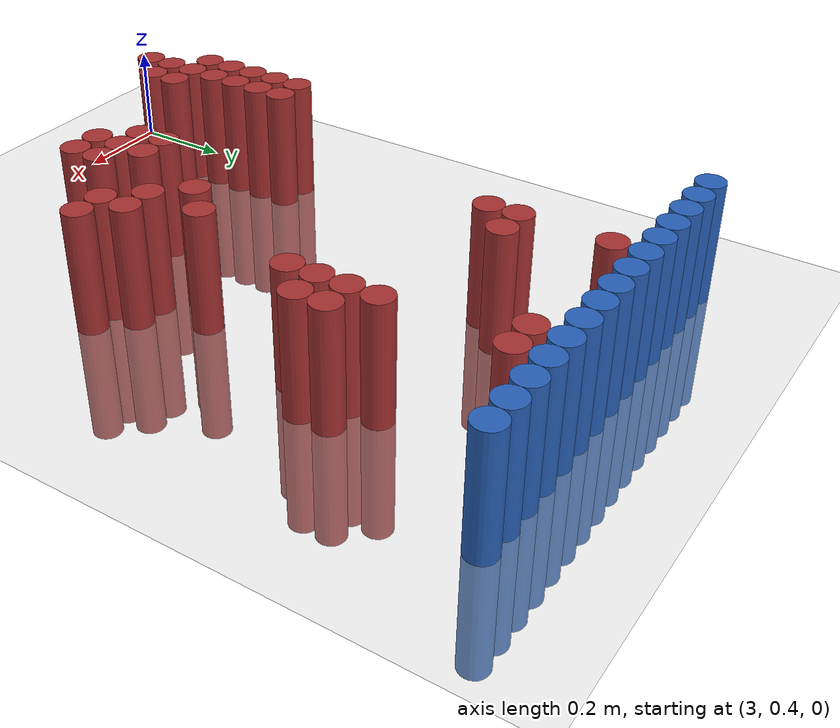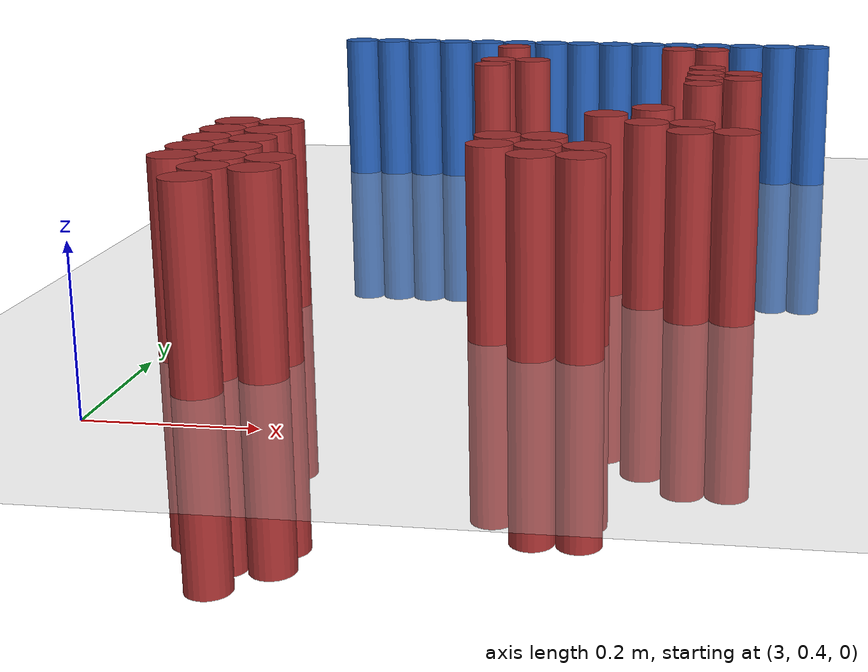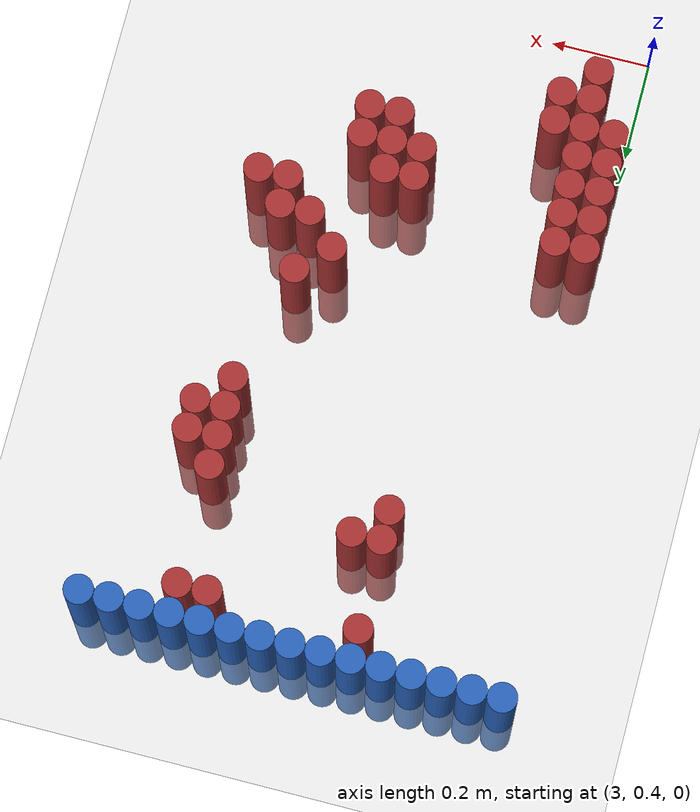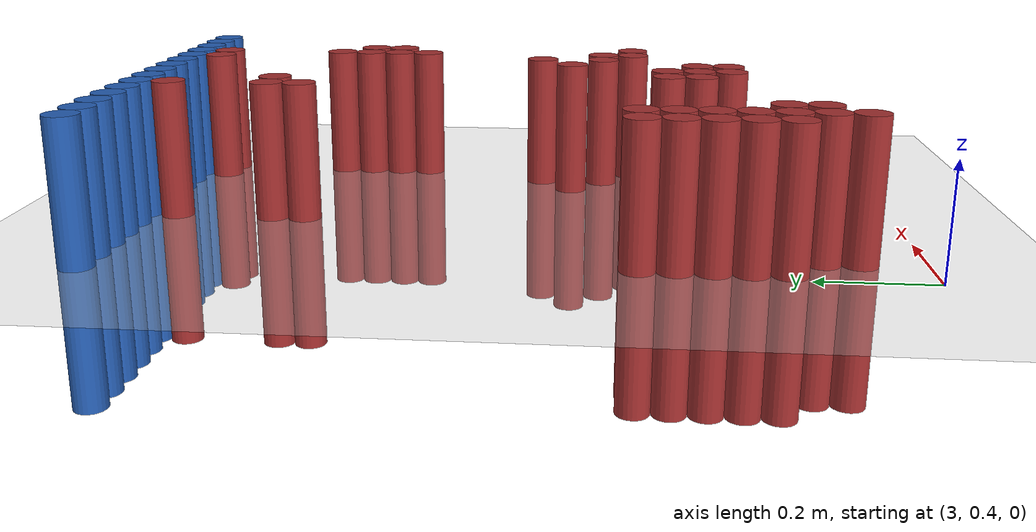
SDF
<sdf version="1.6">
 <world name="default">
  <model name="ground_plane">
   <static>1</static>
   <link name="link">
    <collision name="collision">
     <geometry><plane><normal>0 0 1</normal><size>100 100</size></plane></geometry>
     <surface><friction><ode><mu>100</mu><mu2>50</mu2></ode></friction></surface>
    </collision>
    <visual name="visual">
     <cast_shadows>0</cast_shadows>
     <geometry><plane><normal>0 0 1</normal><size>100 100</size></plane></geometry>
     <material>
      <script><uri>file://media/materials/scripts/gazebo.material</uri><name>Gazebo/Grey</name></script>
     </material>
    </visual>
   </link>
  </model>
  <model name="unit_cylinder_110">
   <static>1</static>
   <pose>2.970000 1.770000 0.000000 0.000000 0.000000 0.000000</pose>
   <link name="link">
    <inertial>
     <mass>1</mass>
     <inertia><ixx>0.145833</ixx><ixy>0</ixy><ixz>0</ixz><iyy>0.145833</iyy><iyz>0</iyz><izz>0.125</izz></inertia>
    </inertial>
    <collision name="collision">
     <geometry><cylinder><radius>0.030000</radius><length>0.5</length></cylinder></geometry>
    </collision>
    <visual name="visual">
     <geometry><cylinder><radius>0.030000</radius><length>0.5</length></cylinder></geometry>
     <material>
      <ambient>0.152000 0.379000 0.720000 1</ambient>
      <diffuse>0.152000 0.379000 0.720000 1</diffuse>
     </material>
     <material>
      <script><name>Gazebo/Grey</name><uri>file://media/materials/scripts/gazebo.material</uri></script>
     </material>
    </visual>
   </link>
  </model>
  <model name="unit_cylinder_111">
   <static>1</static>
   <pose>3.030000 1.770000 0.000000 0.000000 0.000000 0.000000</pose>
   <link name="link">
    <inertial>
     <mass>1</mass>
     <inertia><ixx>0.145833</ixx><ixy>0</ixy><ixz>0</ixz><iyy>0.145833</iyy><iyz>0</iyz><izz>0.125</izz></inertia>
    </inertial>
    <collision name="collision">
     <geometry><cylinder><radius>0.030000</radius><length>0.5</length></cylinder></geometry>
    </collision>
    <visual name="visual">
     <geometry><cylinder><radius>0.030000</radius><length>0.5</length></cylinder></geometry>
     <material>
      <ambient>0.152000 0.379000 0.720000 1</ambient>
      <diffuse>0.152000 0.379000 0.720000 1</diffuse>
     </material>
     <material>
      <script><name>Gazebo/Grey</name><uri>file://media/materials/scripts/gazebo.material</uri></script>
     </material>
    </visual>
   </link>
  </model>
  <model name="unit_cylinder_112">
   <static>1</static>
   <pose>3.090000 1.770000 0.000000 0.000000 0.000000 0.000000</pose>
   <link name="link">
    <inertial>
     <mass>1</mass>
     <inertia><ixx>0.145833</ixx><ixy>0</ixy><ixz>0</ixz><iyy>0.145833</iyy><iyz>0</iyz><izz>0.125</izz></inertia>
    </inertial>
    <collision name="collision">
     <geometry><cylinder><radius>0.030000</radius><length>0.5</length></cylinder></geometry>
    </collision>
    <visual name="visual">
     <geometry><cylinder><radius>0.030000</radius><length>0.5</length></cylinder></geometry>
     <material>
      <ambient>0.152000 0.379000 0.720000 1</ambient>
      <diffuse>0.152000 0.379000 0.720000 1</diffuse>
     </material>
     <material>
      <script><name>Gazebo/Grey</name><uri>file://media/materials/scripts/gazebo.material</uri></script>
     </material>
    </visual>
   </link>
  </model>
  <model name="unit_cylinder_113">
   <static>1</static>
   <pose>3.150000 1.770000 0.000000 0.000000 0.000000 0.000000</pose>
   <link name="link">
    <inertial>
     <mass>1</mass>
     <inertia><ixx>0.145833</ixx><ixy>0</ixy><ixz>0</ixz><iyy>0.145833</iyy><iyz>0</iyz><izz>0.125</izz></inertia>
    </inertial>
    <collision name="collision">
     <geometry><cylinder><radius>0.030000</radius><length>0.5</length></cylinder></geometry>
    </collision>
    <visual name="visual">
     <geometry><cylinder><radius>0.030000</radius><length>0.5</length></cylinder></geometry>
     <material>
      <ambient>0.152000 0.379000 0.720000 1</ambient>
      <diffuse>0.152000 0.379000 0.720000 1</diffuse>
     </material>
     <material>
      <script><name>Gazebo/Grey</name><uri>file://media/materials/scripts/gazebo.material</uri></script>
     </material>
    </visual>
   </link>
  </model>
  <model name="unit_cylinder_114">
   <static>1</static>
   <pose>3.210000 1.770000 0.000000 0.000000 0.000000 0.000000</pose>
   <link name="link">
    <inertial>
     <mass>1</mass>
     <inertia><ixx>0.145833</ixx><ixy>0</ixy><ixz>0</ixz><iyy>0.145833</iyy><iyz>0</iyz><izz>0.125</izz></inertia>
    </inertial>
    <collision name="collision">
     <geometry><cylinder><radius>0.030000</radius><length>0.5</length></cylinder></geometry>
    </collision>
    <visual name="visual">
     <geometry><cylinder><radius>0.030000</radius><length>0.5</length></cylinder></geometry>
     <material>
      <ambient>0.152000 0.379000 0.720000 1</ambient>
      <diffuse>0.152000 0.379000 0.720000 1</diffuse>
     </material>
     <material>
      <script><name>Gazebo/Grey</name><uri>file://media/materials/scripts/gazebo.material</uri></script>
     </material>
    </visual>
   </link>
  </model>
  <model name="unit_cylinder_115">
   <static>1</static>
   <pose>3.270000 1.770000 0.000000 0.000000 0.000000 0.000000</pose>
   <link name="link">
    <inertial>
     <mass>1</mass>
     <inertia><ixx>0.145833</ixx><ixy>0</ixy><ixz>0</ixz><iyy>0.145833</iyy><iyz>0</iyz><izz>0.125</izz></inertia>
    </inertial>
    <collision name="collision">
     <geometry><cylinder><radius>0.030000</radius><length>0.5</length></cylinder></geometry>
    </collision>
    <visual name="visual">
     <geometry><cylinder><radius>0.030000</radius><length>0.5</length></cylinder></geometry>
     <material>
      <ambient>0.152000 0.379000 0.720000 1</ambient>
      <diffuse>0.152000 0.379000 0.720000 1</diffuse>
     </material>
     <material>
      <script><name>Gazebo/Grey</name><uri>file://media/materials/scripts/gazebo.material</uri></script>
     </material>
    </visual>
   </link>
  </model>
  <model name="unit_cylinder_116">
   <static>1</static>
   <pose>3.330000 1.770000 0.000000 0.000000 0.000000 0.000000</pose>
   <link name="link">
    <inertial>
     <mass>1</mass>
     <inertia><ixx>0.145833</ixx><ixy>0</ixy><ixz>0</ixz><iyy>0.145833</iyy><iyz>0</iyz><izz>0.125</izz></inertia>
    </inertial>
    <collision name="collision">
     <geometry><cylinder><radius>0.030000</radius><length>0.5</length></cylinder></geometry>
    </collision>
    <visual name="visual">
     <geometry><cylinder><radius>0.030000</radius><length>0.5</length></cylinder></geometry>
     <material>
      <ambient>0.152000 0.379000 0.720000 1</ambient>
      <diffuse>0.152000 0.379000 0.720000 1</diffuse>
     </material>
     <material>
      <script><name>Gazebo/Grey</name><uri>file://media/materials/scripts/gazebo.material</uri></script>
     </material>
    </visual>
   </link>
  </model>
  <model name="unit_cylinder_117">
   <static>1</static>
   <pose>3.390000 1.770000 0.000000 0.000000 0.000000 0.000000</pose>
   <link name="link">
    <inertial>
     <mass>1</mass>
     <inertia><ixx>0.145833</ixx><ixy>0</ixy><ixz>0</ixz><iyy>0.145833</iyy><iyz>0</iyz><izz>0.125</izz></inertia>
    </inertial>
    <collision name="collision">
     <geometry><cylinder><radius>0.030000</radius><length>0.5</length></cylinder></geometry>
    </collision>
    <visual name="visual">
     <geometry><cylinder><radius>0.030000</radius><length>0.5</length></cylinder></geometry>
     <material>
      <ambient>0.152000 0.379000 0.720000 1</ambient>
      <diffuse>0.152000 0.379000 0.720000 1</diffuse>
     </material>
     <material>
      <script><name>Gazebo/Grey</name><uri>file://media/materials/scripts/gazebo.material</uri></script>
     </material>
    </visual>
   </link>
  </model>
  <model name="unit_cylinder_118">
   <static>1</static>
   <pose>3.450000 1.770000 0.000000 0.000000 0.000000 0.000000</pose>
   <link name="link">
    <inertial>
     <mass>1</mass>
     <inertia><ixx>0.145833</ixx><ixy>0</ixy><ixz>0</ixz><iyy>0.145833</iyy><iyz>0</iyz><izz>0.125</izz></inertia>
    </inertial>
    <collision name="collision">
     <geometry><cylinder><radius>0.030000</radius><length>0.5</length></cylinder></geometry>
    </collision>
    <visual name="visual">
     <geometry><cylinder><radius>0.030000</radius><length>0.5</length></cylinder></geometry>
     <material>
      <ambient>0.152000 0.379000 0.720000 1</ambient>
      <diffuse>0.152000 0.379000 0.720000 1</diffuse>
     </material>
     <material>
      <script><name>Gazebo/Grey</name><uri>file://media/materials/scripts/gazebo.material</uri></script>
     </material>
    </visual>
   </link>
  </model>
  <model name="unit_cylinder_119">
   <static>1</static>
   <pose>3.510000 1.770000 0.000000 0.000000 0.000000 0.000000</pose>
   <link name="link">
    <inertial>
     <mass>1</mass>
     <inertia><ixx>0.145833</ixx><ixy>0</ixy><ixz>0</ixz><iyy>0.145833</iyy><iyz>0</iyz><izz>0.125</izz></inertia>
    </inertial>
    <collision name="collision">
     <geometry><cylinder><radius>0.030000</radius><length>0.5</length></cylinder></geometry>
    </collision>
    <visual name="visual">
     <geometry><cylinder><radius>0.030000</radius><length>0.5</length></cylinder></geometry>
     <material>
      <ambient>0.152000 0.379000 0.720000 1</ambient>
      <diffuse>0.152000 0.379000 0.720000 1</diffuse>
     </material>
     <material>
      <script><name>Gazebo/Grey</name><uri>file://media/materials/scripts/gazebo.material</uri></script>
     </material>
    </visual>
   </link>
  </model>
  <model name="unit_cylinder_120">
   <static>1</static>
   <pose>3.570000 1.770000 0.000000 0.000000 0.000000 0.000000</pose>
   <link name="link">
    <inertial>
     <mass>1</mass>
     <inertia><ixx>0.145833</ixx><ixy>0</ixy><ixz>0</ixz><iyy>0.145833</iyy><iyz>0</iyz><izz>0.125</izz></inertia>
    </inertial>
    <collision name="collision">
     <geometry><cylinder><radius>0.030000</radius><length>0.5</length></cylinder></geometry>
    </collision>
    <visual name="visual">
     <geometry><cylinder><radius>0.030000</radius><length>0.5</length></cylinder></geometry>
     <material>
      <ambient>0.152000 0.379000 0.720000 1</ambient>
      <diffuse>0.152000 0.379000 0.720000 1</diffuse>
     </material>
     <material>
      <script><name>Gazebo/Grey</name><uri>file://media/materials/scripts/gazebo.material</uri></script>
     </material>
    </visual>
   </link>
  </model>
  <model name="unit_cylinder_121">
   <static>1</static>
   <pose>3.630000 1.770000 0.000000 0.000000 0.000000 0.000000</pose>
   <link name="link">
    <inertial>
     <mass>1</mass>
     <inertia><ixx>0.145833</ixx><ixy>0</ixy><ixz>0</ixz><iyy>0.145833</iyy><iyz>0</iyz><izz>0.125</izz></inertia>
    </inertial>
    <collision name="collision">
     <geometry><cylinder><radius>0.030000</radius><length>0.5</length></cylinder></geometry>
    </collision>
    <visual name="visual">
     <geometry><cylinder><radius>0.030000</radius><length>0.5</length></cylinder></geometry>
     <material>
      <ambient>0.152000 0.379000 0.720000 1</ambient>
      <diffuse>0.152000 0.379000 0.720000 1</diffuse>
     </material>
     <material>
      <script><name>Gazebo/Grey</name><uri>file://media/materials/scripts/gazebo.material</uri></script>
     </material>
    </visual>
   </link>
  </model>
  <model name="unit_cylinder_122">
   <static>1</static>
   <pose>3.690000 1.770000 0.000000 0.000000 0.000000 0.000000</pose>
   <link name="link">
    <inertial>
     <mass>1</mass>
     <inertia><ixx>0.145833</ixx><ixy>0</ixy><ixz>0</ixz><iyy>0.145833</iyy><iyz>0</iyz><izz>0.125</izz></inertia>
    </inertial>
    <collision name="collision">
     <geometry><cylinder><radius>0.030000</radius><length>0.5</length></cylinder></geometry>
    </collision>
    <visual name="visual">
     <geometry><cylinder><radius>0.030000</radius><length>0.5</length></cylinder></geometry>
     <material>
      <ambient>0.152000 0.379000 0.720000 1</ambient>
      <diffuse>0.152000 0.379000 0.720000 1</diffuse>
     </material>
     <material>
      <script><name>Gazebo/Grey</name><uri>file://media/materials/scripts/gazebo.material</uri></script>
     </material>
    </visual>
   </link>
  </model>
  <model name="unit_cylinder_123">
   <static>1</static>
   <pose>3.750000 1.770000 0.000000 0.000000 0.000000 0.000000</pose>
   <link name="link">
    <inertial>
     <mass>1</mass>
     <inertia><ixx>0.145833</ixx><ixy>0</ixy><ixz>0</ixz><iyy>0.145833</iyy><iyz>0</iyz><izz>0.125</izz></inertia>
    </inertial>
    <collision name="collision">
     <geometry><cylinder><radius>0.030000</radius><length>0.5</length></cylinder></geometry>
    </collision>
    <visual name="visual">
     <geometry><cylinder><radius>0.030000</radius><length>0.5</length></cylinder></geometry>
     <material>
      <ambient>0.152000 0.379000 0.720000 1</ambient>
      <diffuse>0.152000 0.379000 0.720000 1</diffuse>
     </material>
     <material>
      <script><name>Gazebo/Grey</name><uri>file://media/materials/scripts/gazebo.material</uri></script>
     </material>
    </visual>
   </link>
  </model>
  <model name="unit_cylinder_124">
   <static>1</static>
   <pose>3.810000 1.770000 0.000000 0.000000 0.000000 0.000000</pose>
   <link name="link">
    <inertial>
     <mass>1</mass>
     <inertia><ixx>0.145833</ixx><ixy>0</ixy><ixz>0</ixz><iyy>0.145833</iyy><iyz>0</iyz><izz>0.125</izz></inertia>
    </inertial>
    <collision name="collision">
     <geometry><cylinder><radius>0.030000</radius><length>0.5</length></cylinder></geometry>
    </collision>
    <visual name="visual">
     <geometry><cylinder><radius>0.030000</radius><length>0.5</length></cylinder></geometry>
     <material>
      <ambient>0.152000 0.379000 0.720000 1</ambient>
      <diffuse>0.152000 0.379000 0.720000 1</diffuse>
     </material>
     <material>
      <script><name>Gazebo/Grey</name><uri>file://media/materials/scripts/gazebo.material</uri></script>
     </material>
    </visual>
   </link>
  </model>
  <model name="unit_cylinder_134">
   <static>1</static>
   <pose>3.270000 1.710000 0.000000 0.000000 0.000000 0.000000</pose>
   <link name="link">
    <inertial>
     <mass>1</mass>
     <inertia><ixx>0.145833</ixx><ixy>0</ixy><ixz>0</ixz><iyy>0.145833</iyy><iyz>0</iyz><izz>0.125</izz></inertia>
    </inertial>
    <collision name="collision">
     <geometry><cylinder><radius>0.030000</radius><length>0.5</length></cylinder></geometry>
    </collision>
    <visual name="visual">
     <geometry><cylinder><radius>0.030000</radius><length>0.5</length></cylinder></geometry>
     <material>
      <ambient>0.648000 0.192000 0.192000 1</ambient>
      <diffuse>0.648000 0.192000 0.192000 1</diffuse>
     </material>
     <material>
      <script><name>Gazebo/Grey</name><uri>file://media/materials/scripts/gazebo.material</uri></script>
     </material>
    </visual>
   </link>
  </model>
  <model name="unit_cylinder_135">
   <static>1</static>
   <pose>3.570000 1.710000 0.000000 0.000000 0.000000 0.000000</pose>
   <link name="link">
    <inertial>
     <mass>1</mass>
     <inertia><ixx>0.145833</ixx><ixy>0</ixy><ixz>0</ixz><iyy>0.145833</iyy><iyz>0</iyz><izz>0.125</izz></inertia>
    </inertial>
    <collision name="collision">
     <geometry><cylinder><radius>0.030000</radius><length>0.5</length></cylinder></geometry>
    </collision>
    <visual name="visual">
     <geometry><cylinder><radius>0.030000</radius><length>0.5</length></cylinder></geometry>
     <material>
      <ambient>0.648000 0.192000 0.192000 1</ambient>
      <diffuse>0.648000 0.192000 0.192000 1</diffuse>
     </material>
     <material>
      <script><name>Gazebo/Grey</name><uri>file://media/materials/scripts/gazebo.material</uri></script>
     </material>
    </visual>
   </link>
  </model>
  <model name="unit_cylinder_136">
   <static>1</static>
   <pose>3.630000 1.710000 0.000000 0.000000 0.000000 0.000000</pose>
   <link name="link">
    <inertial>
     <mass>1</mass>
     <inertia><ixx>0.145833</ixx><ixy>0</ixy><ixz>0</ixz><iyy>0.145833</iyy><iyz>0</iyz><izz>0.125</izz></inertia>
    </inertial>
    <collision name="collision">
     <geometry><cylinder><radius>0.030000</radius><length>0.5</length></cylinder></geometry>
    </collision>
    <visual name="visual">
     <geometry><cylinder><radius>0.030000</radius><length>0.5</length></cylinder></geometry>
     <material>
      <ambient>0.648000 0.192000 0.192000 1</ambient>
      <diffuse>0.648000 0.192000 0.192000 1</diffuse>
     </material>
     <material>
      <script><name>Gazebo/Grey</name><uri>file://media/materials/scripts/gazebo.material</uri></script>
     </material>
    </visual>
   </link>
  </model>
  <model name="unit_cylinder_138">
   <static>1</static>
   <pose>3.270000 1.530000 0.000000 0.000000 0.000000 0.000000</pose>
   <link name="link">
    <inertial>
     <mass>1</mass>
     <inertia><ixx>0.145833</ixx><ixy>0</ixy><ixz>0</ixz><iyy>0.145833</iyy><iyz>0</iyz><izz>0.125</izz></inertia>
    </inertial>
    <collision name="collision">
     <geometry><cylinder><radius>0.030000</radius><length>0.5</length></cylinder></geometry>
    </collision>
    <visual name="visual">
     <geometry><cylinder><radius>0.030000</radius><length>0.5</length></cylinder></geometry>
     <material>
      <ambient>0.648000 0.192000 0.192000 1</ambient>
      <diffuse>0.648000 0.192000 0.192000 1</diffuse>
     </material>
     <material>
      <script><name>Gazebo/Grey</name><uri>file://media/materials/scripts/gazebo.material</uri></script>
     </material>
    </visual>
   </link>
  </model>
  <model name="unit_cylinder_139">
   <static>1</static>
   <pose>3.330000 1.530000 0.000000 0.000000 0.000000 0.000000</pose>
   <link name="link">
    <inertial>
     <mass>1</mass>
     <inertia><ixx>0.145833</ixx><ixy>0</ixy><ixz>0</ixz><iyy>0.145833</iyy><iyz>0</iyz><izz>0.125</izz></inertia>
    </inertial>
    <collision name="collision">
     <geometry><cylinder><radius>0.030000</radius><length>0.5</length></cylinder></geometry>
    </collision>
    <visual name="visual">
     <geometry><cylinder><radius>0.030000</radius><length>0.5</length></cylinder></geometry>
     <material>
      <ambient>0.648000 0.192000 0.192000 1</ambient>
      <diffuse>0.648000 0.192000 0.192000 1</diffuse>
     </material>
     <material>
      <script><name>Gazebo/Grey</name><uri>file://media/materials/scripts/gazebo.material</uri></script>
     </material>
    </visual>
   </link>
  </model>
  <model name="unit_cylinder_144">
   <static>1</static>
   <pose>3.270000 1.470000 0.000000 0.000000 0.000000 0.000000</pose>
   <link name="link">
    <inertial>
     <mass>1</mass>
     <inertia><ixx>0.145833</ixx><ixy>0</ixy><ixz>0</ixz><iyy>0.145833</iyy><iyz>0</iyz><izz>0.125</izz></inertia>
    </inertial>
    <collision name="collision">
     <geometry><cylinder><radius>0.030000</radius><length>0.5</length></cylinder></geometry>
    </collision>
    <visual name="visual">
     <geometry><cylinder><radius>0.030000</radius><length>0.5</length></cylinder></geometry>
     <material>
      <ambient>0.648000 0.192000 0.192000 1</ambient>
      <diffuse>0.648000 0.192000 0.192000 1</diffuse>
     </material>
     <material>
      <script><name>Gazebo/Grey</name><uri>file://media/materials/scripts/gazebo.material</uri></script>
     </material>
    </visual>
   </link>
  </model>
  <model name="unit_cylinder_145">
   <static>1</static>
   <pose>3.630000 1.470000 0.000000 0.000000 0.000000 0.000000</pose>
   <link name="link">
    <inertial>
     <mass>1</mass>
     <inertia><ixx>0.145833</ixx><ixy>0</ixy><ixz>0</ixz><iyy>0.145833</iyy><iyz>0</iyz><izz>0.125</izz></inertia>
    </inertial>
    <collision name="collision">
     <geometry><cylinder><radius>0.030000</radius><length>0.5</length></cylinder></geometry>
    </collision>
    <visual name="visual">
     <geometry><cylinder><radius>0.030000</radius><length>0.5</length></cylinder></geometry>
     <material>
      <ambient>0.648000 0.192000 0.192000 1</ambient>
      <diffuse>0.648000 0.192000 0.192000 1</diffuse>
     </material>
     <material>
      <script><name>Gazebo/Grey</name><uri>file://media/materials/scripts/gazebo.material</uri></script>
     </material>
    </visual>
   </link>
  </model>
  <model name="unit_cylinder_150">
   <static>1</static>
   <pose>3.630000 1.410000 0.000000 0.000000 0.000000 0.000000</pose>
   <link name="link">
    <inertial>
     <mass>1</mass>
     <inertia><ixx>0.145833</ixx><ixy>0</ixy><ixz>0</ixz><iyy>0.145833</iyy><iyz>0</iyz><izz>0.125</izz></inertia>
    </inertial>
    <collision name="collision">
     <geometry><cylinder><radius>0.030000</radius><length>0.5</length></cylinder></geometry>
    </collision>
    <visual name="visual">
     <geometry><cylinder><radius>0.030000</radius><length>0.5</length></cylinder></geometry>
     <material>
      <ambient>0.648000 0.192000 0.192000 1</ambient>
      <diffuse>0.648000 0.192000 0.192000 1</diffuse>
     </material>
     <material>
      <script><name>Gazebo/Grey</name><uri>file://media/materials/scripts/gazebo.material</uri></script>
     </material>
    </visual>
   </link>
  </model>
  <model name="unit_cylinder_151">
   <static>1</static>
   <pose>3.690000 1.410000 0.000000 0.000000 0.000000 0.000000</pose>
   <link name="link">
    <inertial>
     <mass>1</mass>
     <inertia><ixx>0.145833</ixx><ixy>0</ixy><ixz>0</ixz><iyy>0.145833</iyy><iyz>0</iyz><izz>0.125</izz></inertia>
    </inertial>
    <collision name="collision">
     <geometry><cylinder><radius>0.030000</radius><length>0.5</length></cylinder></geometry>
    </collision>
    <visual name="visual">
     <geometry><cylinder><radius>0.030000</radius><length>0.5</length></cylinder></geometry>
     <material>
      <ambient>0.648000 0.192000 0.192000 1</ambient>
      <diffuse>0.648000 0.192000 0.192000 1</diffuse>
     </material>
     <material>
      <script><name>Gazebo/Grey</name><uri>file://media/materials/scripts/gazebo.material</uri></script>
     </material>
    </visual>
   </link>
  </model>
  <model name="unit_cylinder_157">
   <static>1</static>
   <pose>3.630000 1.350000 0.000000 0.000000 0.000000 0.000000</pose>
   <link name="link">
    <inertial>
     <mass>1</mass>
     <inertia><ixx>0.145833</ixx><ixy>0</ixy><ixz>0</ixz><iyy>0.145833</iyy><iyz>0</iyz><izz>0.125</izz></inertia>
    </inertial>
    <collision name="collision">
     <geometry><cylinder><radius>0.030000</radius><length>0.5</length></cylinder></geometry>
    </collision>
    <visual name="visual">
     <geometry><cylinder><radius>0.030000</radius><length>0.5</length></cylinder></geometry>
     <material>
      <ambient>0.648000 0.192000 0.192000 1</ambient>
      <diffuse>0.648000 0.192000 0.192000 1</diffuse>
     </material>
     <material>
      <script><name>Gazebo/Grey</name><uri>file://media/materials/scripts/gazebo.material</uri></script>
     </material>
    </visual>
   </link>
  </model>
  <model name="unit_cylinder_158">
   <static>1</static>
   <pose>3.690000 1.350000 0.000000 0.000000 0.000000 0.000000</pose>
   <link name="link">
    <inertial>
     <mass>1</mass>
     <inertia><ixx>0.145833</ixx><ixy>0</ixy><ixz>0</ixz><iyy>0.145833</iyy><iyz>0</iyz><izz>0.125</izz></inertia>
    </inertial>
    <collision name="collision">
     <geometry><cylinder><radius>0.030000</radius><length>0.5</length></cylinder></geometry>
    </collision>
    <visual name="visual">
     <geometry><cylinder><radius>0.030000</radius><length>0.5</length></cylinder></geometry>
     <material>
      <ambient>0.648000 0.192000 0.192000 1</ambient>
      <diffuse>0.648000 0.192000 0.192000 1</diffuse>
     </material>
     <material>
      <script><name>Gazebo/Grey</name><uri>file://media/materials/scripts/gazebo.material</uri></script>
     </material>
    </visual>
   </link>
  </model>
  <model name="unit_cylinder_162">
   <static>1</static>
   <pose>3.630000 1.290000 0.000000 0.000000 0.000000 0.000000</pose>
   <link name="link">
    <inertial>
     <mass>1</mass>
     <inertia><ixx>0.145833</ixx><ixy>0</ixy><ixz>0</ixz><iyy>0.145833</iyy><iyz>0</iyz><izz>0.125</izz></inertia>
    </inertial>
    <collision name="collision">
     <geometry><cylinder><radius>0.030000</radius><length>0.5</length></cylinder></geometry>
    </collision>
    <visual name="visual">
     <geometry><cylinder><radius>0.030000</radius><length>0.5</length></cylinder></geometry>
     <material>
      <ambient>0.648000 0.192000 0.192000 1</ambient>
      <diffuse>0.648000 0.192000 0.192000 1</diffuse>
     </material>
     <material>
      <script><name>Gazebo/Grey</name><uri>file://media/materials/scripts/gazebo.material</uri></script>
     </material>
    </visual>
   </link>
  </model>
  <model name="unit_cylinder_168">
   <static>1</static>
   <pose>3.570000 1.050000 0.000000 0.000000 0.000000 0.000000</pose>
   <link name="link">
    <inertial>
     <mass>1</mass>
     <inertia><ixx>0.145833</ixx><ixy>0</ixy><ixz>0</ixz><iyy>0.145833</iyy><iyz>0</iyz><izz>0.125</izz></inertia>
    </inertial>
    <collision name="collision">
     <geometry><cylinder><radius>0.030000</radius><length>0.5</length></cylinder></geometry>
    </collision>
    <visual name="visual">
     <geometry><cylinder><radius>0.030000</radius><length>0.5</length></cylinder></geometry>
     <material>
      <ambient>0.648000 0.192000 0.192000 1</ambient>
      <diffuse>0.648000 0.192000 0.192000 1</diffuse>
     </material>
     <material>
      <script><name>Gazebo/Grey</name><uri>file://media/materials/scripts/gazebo.material</uri></script>
     </material>
    </visual>
   </link>
  </model>
  <model name="unit_cylinder_175">
   <static>1</static>
   <pose>3.510000 0.990000 0.000000 0.000000 0.000000 0.000000</pose>
   <link name="link">
    <inertial>
     <mass>1</mass>
     <inertia><ixx>0.145833</ixx><ixy>0</ixy><ixz>0</ixz><iyy>0.145833</iyy><iyz>0</iyz><izz>0.125</izz></inertia>
    </inertial>
    <collision name="collision">
     <geometry><cylinder><radius>0.030000</radius><length>0.5</length></cylinder></geometry>
    </collision>
    <visual name="visual">
     <geometry><cylinder><radius>0.030000</radius><length>0.5</length></cylinder></geometry>
     <material>
      <ambient>0.648000 0.192000 0.192000 1</ambient>
      <diffuse>0.648000 0.192000 0.192000 1</diffuse>
     </material>
     <material>
      <script><name>Gazebo/Grey</name><uri>file://media/materials/scripts/gazebo.material</uri></script>
     </material>
    </visual>
   </link>
  </model>
  <model name="unit_cylinder_181">
   <static>1</static>
   <pose>3.570000 0.930000 0.000000 0.000000 0.000000 0.000000</pose>
   <link name="link">
    <inertial>
     <mass>1</mass>
     <inertia><ixx>0.145833</ixx><ixy>0</ixy><ixz>0</ixz><iyy>0.145833</iyy><iyz>0</iyz><izz>0.125</izz></inertia>
    </inertial>
    <collision name="collision">
     <geometry><cylinder><radius>0.030000</radius><length>0.5</length></cylinder></geometry>
    </collision>
    <visual name="visual">
     <geometry><cylinder><radius>0.030000</radius><length>0.5</length></cylinder></geometry>
     <material>
      <ambient>0.648000 0.192000 0.192000 1</ambient>
      <diffuse>0.648000 0.192000 0.192000 1</diffuse>
     </material>
     <material>
      <script><name>Gazebo/Grey</name><uri>file://media/materials/scripts/gazebo.material</uri></script>
     </material>
    </visual>
   </link>
  </model>
  <model name="unit_cylinder_182">
   <static>1</static>
   <pose>3.630000 0.930000 0.000000 0.000000 0.000000 0.000000</pose>
   <link name="link">
    <inertial>
     <mass>1</mass>
     <inertia><ixx>0.145833</ixx><ixy>0</ixy><ixz>0</ixz><iyy>0.145833</iyy><iyz>0</iyz><izz>0.125</izz></inertia>
    </inertial>
    <collision name="collision">
     <geometry><cylinder><radius>0.030000</radius><length>0.5</length></cylinder></geometry>
    </collision>
    <visual name="visual">
     <geometry><cylinder><radius>0.030000</radius><length>0.5</length></cylinder></geometry>
     <material>
      <ambient>0.648000 0.192000 0.192000 1</ambient>
      <diffuse>0.648000 0.192000 0.192000 1</diffuse>
     </material>
     <material>
      <script><name>Gazebo/Grey</name><uri>file://media/materials/scripts/gazebo.material</uri></script>
     </material>
    </visual>
   </link>
  </model>
  <model name="unit_cylinder_184">
   <static>1</static>
   <pose>3.030000 0.870000 0.000000 0.000000 0.000000 0.000000</pose>
   <link name="link">
    <inertial>
     <mass>1</mass>
     <inertia><ixx>0.145833</ixx><ixy>0</ixy><ixz>0</ixz><iyy>0.145833</iyy><iyz>0</iyz><izz>0.125</izz></inertia>
    </inertial>
    <collision name="collision">
     <geometry><cylinder><radius>0.030000</radius><length>0.5</length></cylinder></geometry>
    </collision>
    <visual name="visual">
     <geometry><cylinder><radius>0.030000</radius><length>0.5</length></cylinder></geometry>
     <material>
      <ambient>0.648000 0.192000 0.192000 1</ambient>
      <diffuse>0.648000 0.192000 0.192000 1</diffuse>
     </material>
     <material>
      <script><name>Gazebo/Grey</name><uri>file://media/materials/scripts/gazebo.material</uri></script>
     </material>
    </visual>
   </link>
  </model>
  <model name="unit_cylinder_185">
   <static>1</static>
   <pose>3.090000 0.870000 0.000000 0.000000 0.000000 0.000000</pose>
   <link name="link">
    <inertial>
     <mass>1</mass>
     <inertia><ixx>0.145833</ixx><ixy>0</ixy><ixz>0</ixz><iyy>0.145833</iyy><iyz>0</iyz><izz>0.125</izz></inertia>
    </inertial>
    <collision name="collision">
     <geometry><cylinder><radius>0.030000</radius><length>0.5</length></cylinder></geometry>
    </collision>
    <visual name="visual">
     <geometry><cylinder><radius>0.030000</radius><length>0.5</length></cylinder></geometry>
     <material>
      <ambient>0.648000 0.192000 0.192000 1</ambient>
      <diffuse>0.648000 0.192000 0.192000 1</diffuse>
     </material>
     <material>
      <script><name>Gazebo/Grey</name><uri>file://media/materials/scripts/gazebo.material</uri></script>
     </material>
    </visual>
   </link>
  </model>
  <model name="unit_cylinder_186">
   <static>1</static>
   <pose>3.630000 0.870000 0.000000 0.000000 0.000000 0.000000</pose>
   <link name="link">
    <inertial>
     <mass>1</mass>
     <inertia><ixx>0.145833</ixx><ixy>0</ixy><ixz>0</ixz><iyy>0.145833</iyy><iyz>0</iyz><izz>0.125</izz></inertia>
    </inertial>
    <collision name="collision">
     <geometry><cylinder><radius>0.030000</radius><length>0.5</length></cylinder></geometry>
    </collision>
    <visual name="visual">
     <geometry><cylinder><radius>0.030000</radius><length>0.5</length></cylinder></geometry>
     <material>
      <ambient>0.648000 0.192000 0.192000 1</ambient>
      <diffuse>0.648000 0.192000 0.192000 1</diffuse>
     </material>
     <material>
      <script><name>Gazebo/Grey</name><uri>file://media/materials/scripts/gazebo.material</uri></script>
     </material>
    </visual>
   </link>
  </model>
  <model name="unit_cylinder_187">
   <static>1</static>
   <pose>3.690000 0.870000 0.000000 0.000000 0.000000 0.000000</pose>
   <link name="link">
    <inertial>
     <mass>1</mass>
     <inertia><ixx>0.145833</ixx><ixy>0</ixy><ixz>0</ixz><iyy>0.145833</iyy><iyz>0</iyz><izz>0.125</izz></inertia>
    </inertial>
    <collision name="collision">
     <geometry><cylinder><radius>0.030000</radius><length>0.5</length></cylinder></geometry>
    </collision>
    <visual name="visual">
     <geometry><cylinder><radius>0.030000</radius><length>0.5</length></cylinder></geometry>
     <material>
      <ambient>0.648000 0.192000 0.192000 1</ambient>
      <diffuse>0.648000 0.192000 0.192000 1</diffuse>
     </material>
     <material>
      <script><name>Gazebo/Grey</name><uri>file://media/materials/scripts/gazebo.material</uri></script>
     </material>
    </visual>
   </link>
  </model>
  <model name="unit_cylinder_188">
   <static>1</static>
   <pose>3.030000 0.810000 0.000000 0.000000 0.000000 0.000000</pose>
   <link name="link">
    <inertial>
     <mass>1</mass>
     <inertia><ixx>0.145833</ixx><ixy>0</ixy><ixz>0</ixz><iyy>0.145833</iyy><iyz>0</iyz><izz>0.125</izz></inertia>
    </inertial>
    <collision name="collision">
     <geometry><cylinder><radius>0.030000</radius><length>0.5</length></cylinder></geometry>
    </collision>
    <visual name="visual">
     <geometry><cylinder><radius>0.030000</radius><length>0.5</length></cylinder></geometry>
     <material>
      <ambient>0.648000 0.192000 0.192000 1</ambient>
      <diffuse>0.648000 0.192000 0.192000 1</diffuse>
     </material>
     <material>
      <script><name>Gazebo/Grey</name><uri>file://media/materials/scripts/gazebo.material</uri></script>
     </material>
    </visual>
   </link>
  </model>
  <model name="unit_cylinder_189">
   <static>1</static>
   <pose>3.090000 0.810000 0.000000 0.000000 0.000000 0.000000</pose>
   <link name="link">
    <inertial>
     <mass>1</mass>
     <inertia><ixx>0.145833</ixx><ixy>0</ixy><ixz>0</ixz><iyy>0.145833</iyy><iyz>0</iyz><izz>0.125</izz></inertia>
    </inertial>
    <collision name="collision">
     <geometry><cylinder><radius>0.030000</radius><length>0.5</length></cylinder></geometry>
    </collision>
    <visual name="visual">
     <geometry><cylinder><radius>0.030000</radius><length>0.5</length></cylinder></geometry>
     <material>
      <ambient>0.648000 0.192000 0.192000 1</ambient>
      <diffuse>0.648000 0.192000 0.192000 1</diffuse>
     </material>
     <material>
      <script><name>Gazebo/Grey</name><uri>file://media/materials/scripts/gazebo.material</uri></script>
     </material>
    </visual>
   </link>
  </model>
  <model name="unit_cylinder_190">
   <static>1</static>
   <pose>3.390000 0.810000 0.000000 0.000000 0.000000 0.000000</pose>
   <link name="link">
    <inertial>
     <mass>1</mass>
     <inertia><ixx>0.145833</ixx><ixy>0</ixy><ixz>0</ixz><iyy>0.145833</iyy><iyz>0</iyz><izz>0.125</izz></inertia>
    </inertial>
    <collision name="collision">
     <geometry><cylinder><radius>0.030000</radius><length>0.5</length></cylinder></geometry>
    </collision>
    <visual name="visual">
     <geometry><cylinder><radius>0.030000</radius><length>0.5</length></cylinder></geometry>
     <material>
      <ambient>0.648000 0.192000 0.192000 1</ambient>
      <diffuse>0.648000 0.192000 0.192000 1</diffuse>
     </material>
     <material>
      <script><name>Gazebo/Grey</name><uri>file://media/materials/scripts/gazebo.material</uri></script>
     </material>
    </visual>
   </link>
  </model>
  <model name="unit_cylinder_191">
   <static>1</static>
   <pose>3.450000 0.810000 0.000000 0.000000 0.000000 0.000000</pose>
   <link name="link">
    <inertial>
     <mass>1</mass>
     <inertia><ixx>0.145833</ixx><ixy>0</ixy><ixz>0</ixz><iyy>0.145833</iyy><iyz>0</iyz><izz>0.125</izz></inertia>
    </inertial>
    <collision name="collision">
     <geometry><cylinder><radius>0.030000</radius><length>0.5</length></cylinder></geometry>
    </collision>
    <visual name="visual">
     <geometry><cylinder><radius>0.030000</radius><length>0.5</length></cylinder></geometry>
     <material>
      <ambient>0.648000 0.192000 0.192000 1</ambient>
      <diffuse>0.648000 0.192000 0.192000 1</diffuse>
     </material>
     <material>
      <script><name>Gazebo/Grey</name><uri>file://media/materials/scripts/gazebo.material</uri></script>
     </material>
    </visual>
   </link>
  </model>
  <model name="unit_cylinder_192">
   <static>1</static>
   <pose>3.030000 0.750000 0.000000 0.000000 0.000000 0.000000</pose>
   <link name="link">
    <inertial>
     <mass>1</mass>
     <inertia><ixx>0.145833</ixx><ixy>0</ixy><ixz>0</ixz><iyy>0.145833</iyy><iyz>0</iyz><izz>0.125</izz></inertia>
    </inertial>
    <collision name="collision">
     <geometry><cylinder><radius>0.030000</radius><length>0.5</length></cylinder></geometry>
    </collision>
    <visual name="visual">
     <geometry><cylinder><radius>0.030000</radius><length>0.5</length></cylinder></geometry>
     <material>
      <ambient>0.648000 0.192000 0.192000 1</ambient>
      <diffuse>0.648000 0.192000 0.192000 1</diffuse>
     </material>
     <material>
      <script><name>Gazebo/Grey</name><uri>file://media/materials/scripts/gazebo.material</uri></script>
     </material>
    </visual>
   </link>
  </model>
  <model name="unit_cylinder_193">
   <static>1</static>
   <pose>3.090000 0.750000 0.000000 0.000000 0.000000 0.000000</pose>
   <link name="link">
    <inertial>
     <mass>1</mass>
     <inertia><ixx>0.145833</ixx><ixy>0</ixy><ixz>0</ixz><iyy>0.145833</iyy><iyz>0</iyz><izz>0.125</izz></inertia>
    </inertial>
    <collision name="collision">
     <geometry><cylinder><radius>0.030000</radius><length>0.5</length></cylinder></geometry>
    </collision>
    <visual name="visual">
     <geometry><cylinder><radius>0.030000</radius><length>0.5</length></cylinder></geometry>
     <material>
      <ambient>0.648000 0.192000 0.192000 1</ambient>
      <diffuse>0.648000 0.192000 0.192000 1</diffuse>
     </material>
     <material>
      <script><name>Gazebo/Grey</name><uri>file://media/materials/scripts/gazebo.material</uri></script>
     </material>
    </visual>
   </link>
  </model>
  <model name="unit_cylinder_194">
   <static>1</static>
   <pose>3.390000 0.750000 0.000000 0.000000 0.000000 0.000000</pose>
   <link name="link">
    <inertial>
     <mass>1</mass>
     <inertia><ixx>0.145833</ixx><ixy>0</ixy><ixz>0</ixz><iyy>0.145833</iyy><iyz>0</iyz><izz>0.125</izz></inertia>
    </inertial>
    <collision name="collision">
     <geometry><cylinder><radius>0.030000</radius><length>0.5</length></cylinder></geometry>
    </collision>
    <visual name="visual">
     <geometry><cylinder><radius>0.030000</radius><length>0.5</length></cylinder></geometry>
     <material>
      <ambient>0.648000 0.192000 0.192000 1</ambient>
      <diffuse>0.648000 0.192000 0.192000 1</diffuse>
     </material>
     <material>
      <script><name>Gazebo/Grey</name><uri>file://media/materials/scripts/gazebo.material</uri></script>
     </material>
    </visual>
   </link>
  </model>
  <model name="unit_cylinder_195">
   <static>1</static>
   <pose>3.450000 0.750000 0.000000 0.000000 0.000000 0.000000</pose>
   <link name="link">
    <inertial>
     <mass>1</mass>
     <inertia><ixx>0.145833</ixx><ixy>0</ixy><ixz>0</ixz><iyy>0.145833</iyy><iyz>0</iyz><izz>0.125</izz></inertia>
    </inertial>
    <collision name="collision">
     <geometry><cylinder><radius>0.030000</radius><length>0.5</length></cylinder></geometry>
    </collision>
    <visual name="visual">
     <geometry><cylinder><radius>0.030000</radius><length>0.5</length></cylinder></geometry>
     <material>
      <ambient>0.648000 0.192000 0.192000 1</ambient>
      <diffuse>0.648000 0.192000 0.192000 1</diffuse>
     </material>
     <material>
      <script><name>Gazebo/Grey</name><uri>file://media/materials/scripts/gazebo.material</uri></script>
     </material>
    </visual>
   </link>
  </model>
  <model name="unit_cylinder_196">
   <static>1</static>
   <pose>3.510000 0.750000 0.000000 0.000000 0.000000 0.000000</pose>
   <link name="link">
    <inertial>
     <mass>1</mass>
     <inertia><ixx>0.145833</ixx><ixy>0</ixy><ixz>0</ixz><iyy>0.145833</iyy><iyz>0</iyz><izz>0.125</izz></inertia>
    </inertial>
    <collision name="collision">
     <geometry><cylinder><radius>0.030000</radius><length>0.5</length></cylinder></geometry>
    </collision>
    <visual name="visual">
     <geometry><cylinder><radius>0.030000</radius><length>0.5</length></cylinder></geometry>
     <material>
      <ambient>0.648000 0.192000 0.192000 1</ambient>
      <diffuse>0.648000 0.192000 0.192000 1</diffuse>
     </material>
     <material>
      <script><name>Gazebo/Grey</name><uri>file://media/materials/scripts/gazebo.material</uri></script>
     </material>
    </visual>
   </link>
  </model>
  <model name="unit_cylinder_198">
   <static>1</static>
   <pose>3.030000 0.690000 0.000000 0.000000 0.000000 0.000000</pose>
   <link name="link">
    <inertial>
     <mass>1</mass>
     <inertia><ixx>0.145833</ixx><ixy>0</ixy><ixz>0</ixz><iyy>0.145833</iyy><iyz>0</iyz><izz>0.125</izz></inertia>
    </inertial>
    <collision name="collision">
     <geometry><cylinder><radius>0.030000</radius><length>0.5</length></cylinder></geometry>
    </collision>
    <visual name="visual">
     <geometry><cylinder><radius>0.030000</radius><length>0.5</length></cylinder></geometry>
     <material>
      <ambient>0.648000 0.192000 0.192000 1</ambient>
      <diffuse>0.648000 0.192000 0.192000 1</diffuse>
     </material>
     <material>
      <script><name>Gazebo/Grey</name><uri>file://media/materials/scripts/gazebo.material</uri></script>
     </material>
    </visual>
   </link>
  </model>
  <model name="unit_cylinder_199">
   <static>1</static>
   <pose>3.090000 0.690000 0.000000 0.000000 0.000000 0.000000</pose>
   <link name="link">
    <inertial>
     <mass>1</mass>
     <inertia><ixx>0.145833</ixx><ixy>0</ixy><ixz>0</ixz><iyy>0.145833</iyy><iyz>0</iyz><izz>0.125</izz></inertia>
    </inertial>
    <collision name="collision">
     <geometry><cylinder><radius>0.030000</radius><length>0.5</length></cylinder></geometry>
    </collision>
    <visual name="visual">
     <geometry><cylinder><radius>0.030000</radius><length>0.5</length></cylinder></geometry>
     <material>
      <ambient>0.648000 0.192000 0.192000 1</ambient>
      <diffuse>0.648000 0.192000 0.192000 1</diffuse>
     </material>
     <material>
      <script><name>Gazebo/Grey</name><uri>file://media/materials/scripts/gazebo.material</uri></script>
     </material>
    </visual>
   </link>
  </model>
  <model name="unit_cylinder_200">
   <static>1</static>
   <pose>3.450000 0.690000 0.000000 0.000000 0.000000 0.000000</pose>
   <link name="link">
    <inertial>
     <mass>1</mass>
     <inertia><ixx>0.145833</ixx><ixy>0</ixy><ixz>0</ixz><iyy>0.145833</iyy><iyz>0</iyz><izz>0.125</izz></inertia>
    </inertial>
    <collision name="collision">
     <geometry><cylinder><radius>0.030000</radius><length>0.5</length></cylinder></geometry>
    </collision>
    <visual name="visual">
     <geometry><cylinder><radius>0.030000</radius><length>0.5</length></cylinder></geometry>
     <material>
      <ambient>0.648000 0.192000 0.192000 1</ambient>
      <diffuse>0.648000 0.192000 0.192000 1</diffuse>
     </material>
     <material>
      <script><name>Gazebo/Grey</name><uri>file://media/materials/scripts/gazebo.material</uri></script>
     </material>
    </visual>
   </link>
  </model>
  <model name="unit_cylinder_201">
   <static>1</static>
   <pose>3.510000 0.690000 0.000000 0.000000 0.000000 0.000000</pose>
   <link name="link">
    <inertial>
     <mass>1</mass>
     <inertia><ixx>0.145833</ixx><ixy>0</ixy><ixz>0</ixz><iyy>0.145833</iyy><iyz>0</iyz><izz>0.125</izz></inertia>
    </inertial>
    <collision name="collision">
     <geometry><cylinder><radius>0.030000</radius><length>0.5</length></cylinder></geometry>
    </collision>
    <visual name="visual">
     <geometry><cylinder><radius>0.030000</radius><length>0.5</length></cylinder></geometry>
     <material>
      <ambient>0.648000 0.192000 0.192000 1</ambient>
      <diffuse>0.648000 0.192000 0.192000 1</diffuse>
     </material>
     <material>
      <script><name>Gazebo/Grey</name><uri>file://media/materials/scripts/gazebo.material</uri></script>
     </material>
    </visual>
   </link>
  </model>
  <model name="unit_cylinder_202">
   <static>1</static>
   <pose>3.030000 0.630000 0.000000 0.000000 0.000000 0.000000</pose>
   <link name="link">
    <inertial>
     <mass>1</mass>
     <inertia><ixx>0.145833</ixx><ixy>0</ixy><ixz>0</ixz><iyy>0.145833</iyy><iyz>0</iyz><izz>0.125</izz></inertia>
    </inertial>
    <collision name="collision">
     <geometry><cylinder><radius>0.030000</radius><length>0.5</length></cylinder></geometry>
    </collision>
    <visual name="visual">
     <geometry><cylinder><radius>0.030000</radius><length>0.5</length></cylinder></geometry>
     <material>
      <ambient>0.648000 0.192000 0.192000 1</ambient>
      <diffuse>0.648000 0.192000 0.192000 1</diffuse>
     </material>
     <material>
      <script><name>Gazebo/Grey</name><uri>file://media/materials/scripts/gazebo.material</uri></script>
     </material>
    </visual>
   </link>
  </model>
  <model name="unit_cylinder_203">
   <static>1</static>
   <pose>3.090000 0.630000 0.000000 0.000000 0.000000 0.000000</pose>
   <link name="link">
    <inertial>
     <mass>1</mass>
     <inertia><ixx>0.145833</ixx><ixy>0</ixy><ixz>0</ixz><iyy>0.145833</iyy><iyz>0</iyz><izz>0.125</izz></inertia>
    </inertial>
    <collision name="collision">
     <geometry><cylinder><radius>0.030000</radius><length>0.5</length></cylinder></geometry>
    </collision>
    <visual name="visual">
     <geometry><cylinder><radius>0.030000</radius><length>0.5</length></cylinder></geometry>
     <material>
      <ambient>0.648000 0.192000 0.192000 1</ambient>
      <diffuse>0.648000 0.192000 0.192000 1</diffuse>
     </material>
     <material>
      <script><name>Gazebo/Grey</name><uri>file://media/materials/scripts/gazebo.material</uri></script>
     </material>
    </visual>
   </link>
  </model>
  <model name="unit_cylinder_204">
   <static>1</static>
   <pose>3.150000 0.630000 0.000000 0.000000 0.000000 0.000000</pose>
   <link name="link">
    <inertial>
     <mass>1</mass>
     <inertia><ixx>0.145833</ixx><ixy>0</ixy><ixz>0</ixz><iyy>0.145833</iyy><iyz>0</iyz><izz>0.125</izz></inertia>
    </inertial>
    <collision name="collision">
     <geometry><cylinder><radius>0.030000</radius><length>0.5</length></cylinder></geometry>
    </collision>
    <visual name="visual">
     <geometry><cylinder><radius>0.030000</radius><length>0.5</length></cylinder></geometry>
     <material>
      <ambient>0.648000 0.192000 0.192000 1</ambient>
      <diffuse>0.648000 0.192000 0.192000 1</diffuse>
     </material>
     <material>
      <script><name>Gazebo/Grey</name><uri>file://media/materials/scripts/gazebo.material</uri></script>
     </material>
    </visual>
   </link>
  </model>
  <model name="unit_cylinder_205">
   <static>1</static>
   <pose>3.090000 0.570000 0.000000 0.000000 0.000000 0.000000</pose>
   <link name="link">
    <inertial>
     <mass>1</mass>
     <inertia><ixx>0.145833</ixx><ixy>0</ixy><ixz>0</ixz><iyy>0.145833</iyy><iyz>0</iyz><izz>0.125</izz></inertia>
    </inertial>
    <collision name="collision">
     <geometry><cylinder><radius>0.030000</radius><length>0.5</length></cylinder></geometry>
    </collision>
    <visual name="visual">
     <geometry><cylinder><radius>0.030000</radius><length>0.5</length></cylinder></geometry>
     <material>
      <ambient>0.648000 0.192000 0.192000 1</ambient>
      <diffuse>0.648000 0.192000 0.192000 1</diffuse>
     </material>
     <material>
      <script><name>Gazebo/Grey</name><uri>file://media/materials/scripts/gazebo.material</uri></script>
     </material>
    </visual>
   </link>
  </model>
  <model name="unit_cylinder_206">
   <static>1</static>
   <pose>3.150000 0.570000 0.000000 0.000000 0.000000 0.000000</pose>
   <link name="link">
    <inertial>
     <mass>1</mass>
     <inertia><ixx>0.145833</ixx><ixy>0</ixy><ixz>0</ixz><iyy>0.145833</iyy><iyz>0</iyz><izz>0.125</izz></inertia>
    </inertial>
    <collision name="collision">
     <geometry><cylinder><radius>0.030000</radius><length>0.5</length></cylinder></geometry>
    </collision>
    <visual name="visual">
     <geometry><cylinder><radius>0.030000</radius><length>0.5</length></cylinder></geometry>
     <material>
      <ambient>0.648000 0.192000 0.192000 1</ambient>
      <diffuse>0.648000 0.192000 0.192000 1</diffuse>
     </material>
     <material>
      <script><name>Gazebo/Grey</name><uri>file://media/materials/scripts/gazebo.material</uri></script>
     </material>
    </visual>
   </link>
  </model>
  <model name="unit_cylinder_208">
   <static>1</static>
   <pose>3.090000 0.510000 0.000000 0.000000 0.000000 0.000000</pose>
   <link name="link">
    <inertial>
     <mass>1</mass>
     <inertia><ixx>0.145833</ixx><ixy>0</ixy><ixz>0</ixz><iyy>0.145833</iyy><iyz>0</iyz><izz>0.125</izz></inertia>
    </inertial>
    <collision name="collision">
     <geometry><cylinder><radius>0.030000</radius><length>0.5</length></cylinder></geometry>
    </collision>
    <visual name="visual">
     <geometry><cylinder><radius>0.030000</radius><length>0.5</length></cylinder></geometry>
     <material>
      <ambient>0.648000 0.192000 0.192000 1</ambient>
      <diffuse>0.648000 0.192000 0.192000 1</diffuse>
     </material>
     <material>
      <script><name>Gazebo/Grey</name><uri>file://media/materials/scripts/gazebo.material</uri></script>
     </material>
    </visual>
   </link>
  </model>
 </world>
</sdf>
